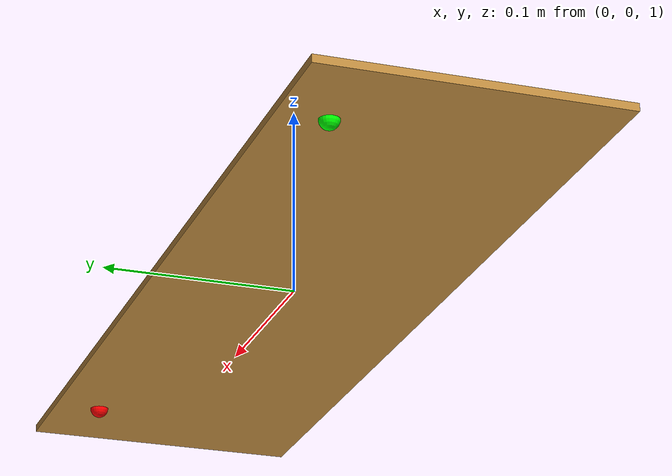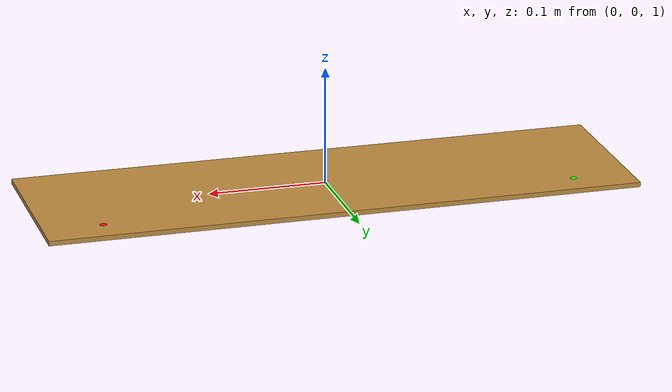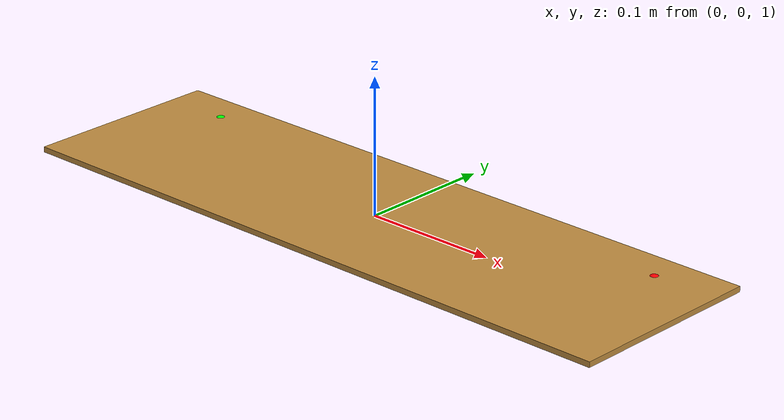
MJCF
<mujoco model="tray">
  <compiler angle="radian"/>

  <default>
    <default class="tray">
      <geom type="box" rgba="0.75 0.55 0.25 1" contype="1" conaffinity="1"/>
    </default>
  </default>

  <worldbody>
    <light pos="0 0 3" dir="0 0 -1" diffuse="1 1 1"/>
    <geom name="floor" type="plane" size="1 1 0.1" rgba="0.85 0.85 0.85 1"/>
    <body name="tray" pos="0 0 1.0">
      <freejoint name="tray_free"/>

      <geom name="tray_geom" class="tray"
            size="0.25 0.075 0.002"
            mass="0.5"/>

      <site name="tray_grip_L" pos="-0.20 0.05 -0.002" size="0.005" rgba="0 1 0 1"/>
      <site name="tray_grip_R" pos="0.20 0.05 -0.002" size="0.005" rgba="1 0 0 1"/>
    </body>
  </worldbody>
</mujoco>
